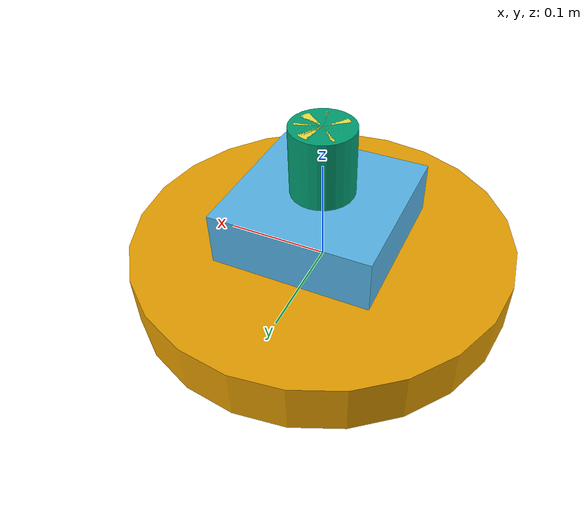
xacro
<?xml version="1.0"?>
<robot xmlns:xacro="http://www.ros.org/wiki/xacro" name="tb3_with_doosan">
  <!-- lightweight Doosan-style mount skeleton for simulation -->
  <link name="base_link">
    <visual><geometry><cylinder length="0.05" radius="0.18"/></geometry></visual>
  </link>
  <link name="doosan_base_link">
    <visual><geometry><box size="0.15 0.15 0.05"/></geometry></visual>
  </link>
  <joint name="doosan_mount_joint" type="fixed"><parent link="base_link"/><child link="doosan_base_link"/><origin xyz="0 0 0.05"/></joint>
  <!-- minimal Doosan arm mimic: 4 virtual joints -->
  <link name="ds_link1"><visual><geometry><cylinder length="0.18" radius="0.03"/></geometry></visual></link>
  <joint name="ds_j1" type="revolute"><parent link="doosan_base_link"/><child link="ds_link1"/><axis xyz="0 0 1"/></joint>
  <link name="ds_link2"><visual><geometry><cylinder length="0.18" radius="0.025"/></geometry></visual></link>
  <joint name="ds_j2" type="revolute"><parent link="ds_link1"/><child link="ds_link2"/><axis xyz="0 1 0"/></joint>
  <link name="ds_ee"><visual><geometry><sphere radius="0.035"/></geometry></visual></link>
  <joint name="ds_j3" type="revolute"><parent link="ds_link2"/><child link="ds_ee"/><axis xyz="0 1 0"/></joint>
</robot>
